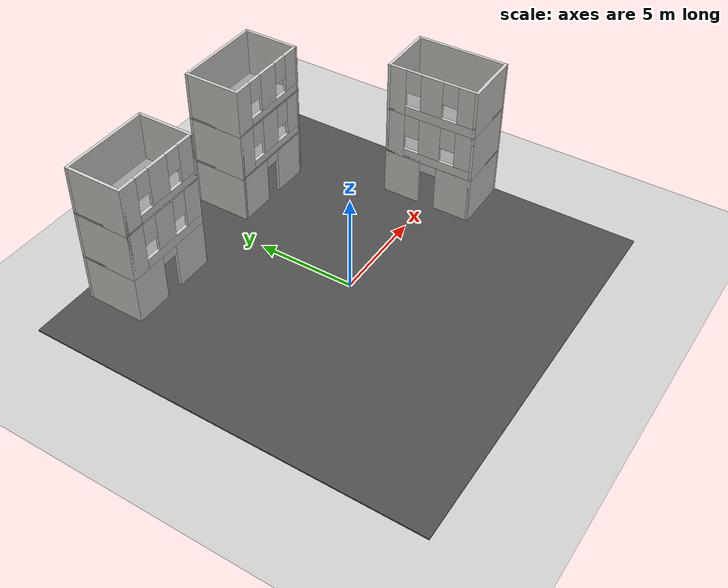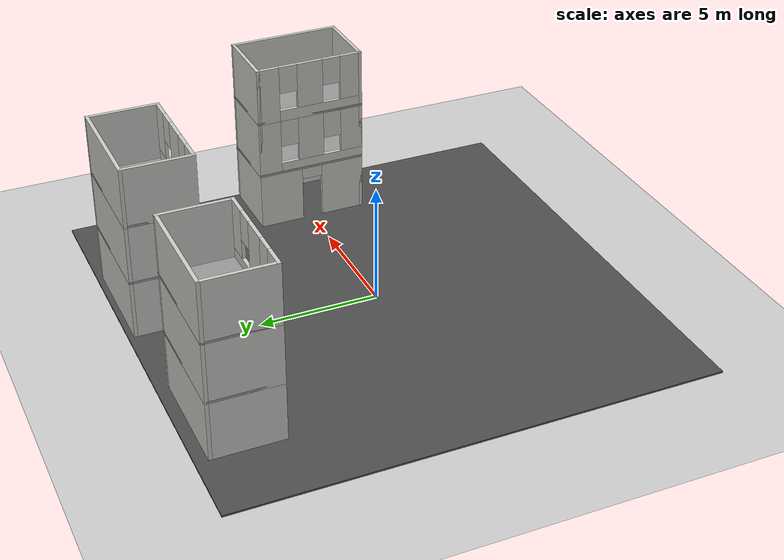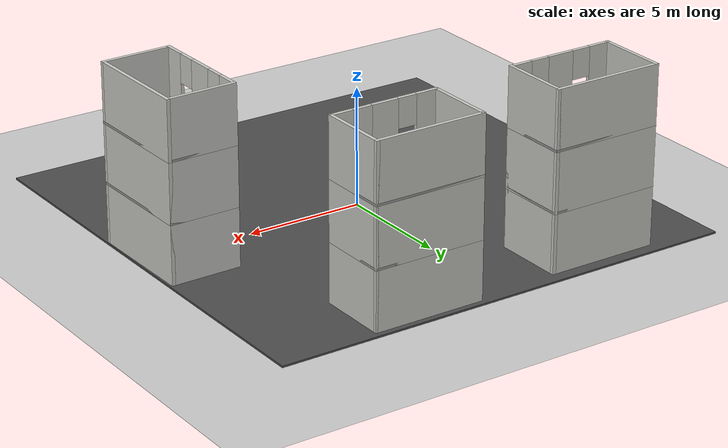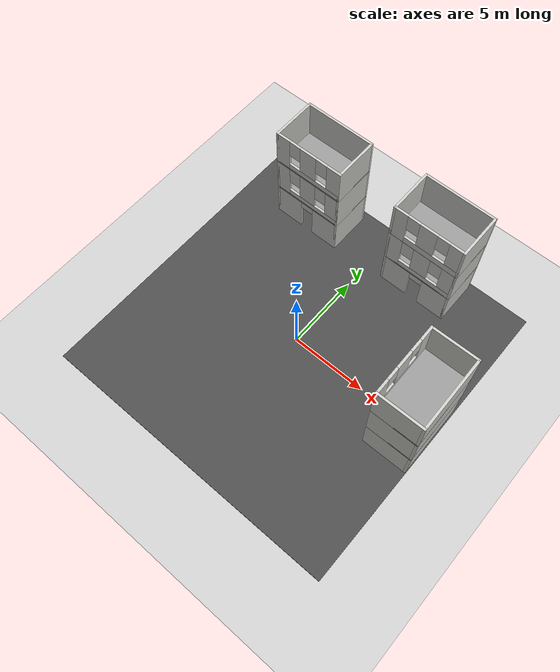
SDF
<sdf version="1.7">
 <world name="default">
  <model name="ground_plane">
   <static>1</static>
   <link name="link">
    <collision name="collision">
     <geometry><plane><normal>0 0 1</normal><size>100 100</size></plane></geometry>
     <surface><friction><ode><mu>100</mu><mu2>50</mu2></ode></friction></surface>
    </collision>
    <visual name="visual">
     <cast_shadows>0</cast_shadows>
     <geometry><plane><normal>0 0 1</normal><size>100 100</size></plane></geometry>
     <material>
      <script><uri>file://media/materials/scripts/gazebo.material</uri><name>Gazebo/Grey</name></script>
     </material>
    </visual>
   </link>
  </model>
  <model name="asphalt_plane">
   <static>1</static>
   <link name="link">
    <collision name="collision"><geometry><box><size>20 20 0.1</size></box></geometry></collision>
    <visual name="visual">
     <cast_shadows>0</cast_shadows>
     <geometry><box><size>20 20 0.1</size></box></geometry>
     <material>
      <script>
       <uri>model://asphalt_plane/materials/scripts</uri>
       <uri>model://asphalt_plane/materials/textures</uri>
       <name>vrc/asphalt</name>
      </script>
     </material>
    </visual>
   </link>
   <pose>0.008449 0.055519 0 0 -0 0</pose>
  </model>
  <model name="apt_0">
   <pose>3.51198 8.32486 0 0 -0 0</pose>
   <link name="Floor_10">
    <collision name="Floor_10_Collision">
     <geometry><box><size>4.75 3 0.1</size></box></geometry>
     <pose>0 0 0.05 0 -0 0</pose>
    </collision>
    <visual name="Floor_10_Visual">
     <pose>0 0 0.05 0 -0 0</pose>
     <geometry><box><size>4.75 3 0.1</size></box></geometry>
     <material>
      <script><uri>file://media/materials/scripts/gazebo.material</uri><name>Gazebo/Grey</name></script>
      <ambient>1 1 1 1</ambient>
     </material>
     <meta><layer>2</layer></meta>
    </visual>
    <pose>-0 0 5 0 -0 0</pose>
   </link>
   <link name="Floor_9">
    <collision name="Floor_9_Collision">
     <geometry><box><size>4.75 3 0.1</size></box></geometry>
     <pose>0 0 0.05 0 -0 0</pose>
    </collision>
    <visual name="Floor_9_Visual">
     <pose>0 0 0.05 0 -0 0</pose>
     <geometry><box><size>4.75 3 0.1</size></box></geometry>
     <material>
      <script><uri>file://media/materials/scripts/gazebo.material</uri><name>Gazebo/Grey</name></script>
      <ambient>1 1 1 1</ambient>
     </material>
     <meta><layer>1</layer></meta>
    </visual>
    <pose>-0 0 2.5 0 -0 0</pose>
   </link>
   <link name="Wall_1">
    <collision name="Wall_1_Collision">
     <geometry><box><size>3 0.15 2.5</size></box></geometry>
     <pose>0 0 1.25 0 -0 0</pose>
    </collision>
    <visual name="Wall_1_Visual">
     <pose>0 0 1.25 0 -0 0</pose>
     <geometry><box><size>3 0.15 2.5</size></box></geometry>
     <material>
      <script><uri>file://media/materials/scripts/gazebo.material</uri><name>Gazebo/CeilingTiled</name></script>
      <ambient>1 1 1 1</ambient>
     </material>
     <meta><layer>0</layer></meta>
    </visual>
    <pose>-2.3 0 0 0 -0 -1.5708</pose>
   </link>
   <link name="Wall_2">
    <pose>-0 -1.425 0 0 -0 0</pose>
    <visual name="Wall_2_Visual_0">
     <pose>-1.4125 0 1.25 0 -0 0</pose>
     <geometry><box><size>1.925 0.15 2.5</size></box></geometry>
     <material>
      <script><uri>file://media/materials/scripts/gazebo.material</uri><name>Gazebo/CeilingTiled</name></script>
      <ambient>1 1 1 1</ambient>
     </material>
     <meta><layer>0</layer></meta>
    </visual>
    <collision name="Wall_2_Collision_0">
     <geometry><box><size>1.925 0.15 2.5</size></box></geometry>
     <pose>-1.4125 0 1.25 0 -0 0</pose>
    </collision>
    <visual name="Wall_2_Visual_1">
     <pose>1.4125 0 1.25 0 -0 0</pose>
     <geometry><box><size>1.925 0.15 2.5</size></box></geometry>
     <material>
      <script><uri>file://media/materials/scripts/gazebo.material</uri><name>Gazebo/CeilingTiled</name></script>
      <ambient>1 1 1 1</ambient>
     </material>
     <meta><layer>0</layer></meta>
    </visual>
    <collision name="Wall_2_Collision_1">
     <geometry><box><size>1.925 0.15 2.5</size></box></geometry>
     <pose>1.4125 0 1.25 0 -0 0</pose>
    </collision>
    <visual name="Wall_2_Visual_2">
     <pose>0 0 2.25 0 -0 0</pose>
     <geometry><box><size>0.9 0.15 0.5</size></box></geometry>
     <material>
      <script><uri>file://media/materials/scripts/gazebo.material</uri><name>Gazebo/CeilingTiled</name></script>
      <ambient>1 1 1 1</ambient>
     </material>
     <meta><layer>0</layer></meta>
    </visual>
    <collision name="Wall_2_Collision_2">
     <geometry><box><size>0.9 0.15 0.5</size></box></geometry>
     <pose>0 0 2.25 0 -0 0</pose>
    </collision>
   </link>
   <link name="Wall_3">
    <collision name="Wall_3_Collision">
     <geometry><box><size>3 0.15 2.5</size></box></geometry>
     <pose>0 0 1.25 0 -0 0</pose>
    </collision>
    <visual name="Wall_3_Visual">
     <pose>0 0 1.25 0 -0 0</pose>
     <geometry><box><size>3 0.15 2.5</size></box></geometry>
     <material>
      <script><uri>file://media/materials/scripts/gazebo.material</uri><name>Gazebo/CeilingTiled</name></script>
      <ambient>1 1 1 1</ambient>
     </material>
     <meta><layer>0</layer></meta>
    </visual>
    <pose>2.3 0 0 0 -0 1.5708</pose>
   </link>
   <link name="Wall_4">
    <collision name="Wall_4_Collision">
     <geometry><box><size>4.75 0.15 2.5</size></box></geometry>
     <pose>0 0 1.25 0 -0 0</pose>
    </collision>
    <visual name="Wall_4_Visual">
     <pose>0 0 1.25 0 -0 0</pose>
     <geometry><box><size>4.75 0.15 2.5</size></box></geometry>
     <material>
      <script><uri>file://media/materials/scripts/gazebo.material</uri><name>Gazebo/CeilingTiled</name></script>
      <ambient>1 1 1 1</ambient>
     </material>
     <meta><layer>0</layer></meta>
    </visual>
    <pose>-0 1.425 0 0 -0 3.14159</pose>
   </link>
   <link name="Wall_42">
    <collision name="Wall_42_Collision">
     <geometry><box><size>3 0.15 2.5</size></box></geometry>
     <pose>0 0 1.25 0 -0 0</pose>
    </collision>
    <visual name="Wall_42_Visual">
     <pose>0 0 1.25 0 -0 0</pose>
     <geometry><box><size>3 0.15 2.5</size></box></geometry>
     <material>
      <script><uri>file://media/materials/scripts/gazebo.material</uri><name>Gazebo/CeilingTiled</name></script>
      <ambient>1 1 1 1</ambient>
     </material>
     <meta><layer>1</layer></meta>
    </visual>
    <pose>-2.3 0 2.5 0 -0 -1.5708</pose>
   </link>
   <link name="Wall_43">
    <pose>-0 -1.425 2.5 0 -0 0</pose>
    <visual name="Wall_43_Visual_0">
     <pose>-1.87625 0 1.25 0 -0 0</pose>
     <geometry><box><size>0.9975 0.15 2.5</size></box></geometry>
     <material>
      <script><uri>file://media/materials/scripts/gazebo.material</uri><name>Gazebo/CeilingTiled</name></script>
      <ambient>1 1 1 1</ambient>
     </material>
     <meta><layer>1</layer></meta>
    </visual>
    <collision name="Wall_43_Collision_0">
     <geometry><box><size>0.9975 0.15 2.5</size></box></geometry>
     <pose>-1.87625 0 1.25 0 -0 0</pose>
    </collision>
    <visual name="Wall_43_Visual_1">
     <pose>0.49875 0 0.25 0 -0 0</pose>
     <geometry><box><size>3.7525 0.15 0.5</size></box></geometry>
     <material>
      <script><uri>file://media/materials/scripts/gazebo.material</uri><name>Gazebo/CeilingTiled</name></script>
      <ambient>1 1 1 1</ambient>
     </material>
     <meta><layer>1</layer></meta>
    </visual>
    <collision name="Wall_43_Collision_1">
     <geometry><box><size>3.7525 0.15 0.5</size></box></geometry>
     <pose>0.49875 0 0.25 0 -0 0</pose>
    </collision>
    <visual name="Wall_43_Visual_2">
     <pose>0 0 1.5 0 -0 0</pose>
     <geometry><box><size>1.155 0.15 2</size></box></geometry>
     <material>
      <script><uri>file://media/materials/scripts/gazebo.material</uri><name>Gazebo/CeilingTiled</name></script>
      <ambient>1 1 1 1</ambient>
     </material>
     <meta><layer>1</layer></meta>
    </visual>
    <collision name="Wall_43_Collision_2">
     <geometry><box><size>1.155 0.15 2</size></box></geometry>
     <pose>0 0 1.5 0 -0 0</pose>
    </collision>
    <visual name="Wall_43_Visual_3">
     <pose>1.87625 0 1.5 0 -0 0</pose>
     <geometry><box><size>0.9975 0.15 2</size></box></geometry>
     <material>
      <script><uri>file://media/materials/scripts/gazebo.material</uri><name>Gazebo/CeilingTiled</name></script>
      <ambient>1 1 1 1</ambient>
     </material>
     <meta><layer>1</layer></meta>
    </visual>
    <collision name="Wall_43_Collision_3">
     <geometry><box><size>0.9975 0.15 2</size></box></geometry>
     <pose>1.87625 0 1.5 0 -0 0</pose>
    </collision>
    <visual name="Wall_43_Visual_4">
     <pose>-0.9775 0 1.9 0 -0 0</pose>
     <geometry><box><size>0.8 0.15 1.2</size></box></geometry>
     <material>
      <script><uri>file://media/materials/scripts/gazebo.material</uri><name>Gazebo/CeilingTiled</name></script>
      <ambient>1 1 1 1</ambient>
     </material>
     <meta><layer>1</layer></meta>
    </visual>
    <collision name="Wall_43_Collision_4">
     <geometry><box><size>0.8 0.15 1.2</size></box></geometry>
     <pose>-0.9775 0 1.9 0 -0 0</pose>
    </collision>
    <visual name="Wall_43_Visual_5">
     <pose>0.9775 0 1.9 0 -0 0</pose>
     <geometry><box><size>0.8 0.15 1.2</size></box></geometry>
     <material>
      <script><uri>file://media/materials/scripts/gazebo.material</uri><name>Gazebo/CeilingTiled</name></script>
      <ambient>1 1 1 1</ambient>
     </material>
     <meta><layer>1</layer></meta>
    </visual>
    <collision name="Wall_43_Collision_5">
     <geometry><box><size>0.8 0.15 1.2</size></box></geometry>
     <pose>0.9775 0 1.9 0 -0 0</pose>
    </collision>
   </link>
   <link name="Wall_44">
    <collision name="Wall_44_Collision">
     <geometry><box><size>3 0.15 2.5</size></box></geometry>
     <pose>0 0 1.25 0 -0 0</pose>
    </collision>
    <visual name="Wall_44_Visual">
     <pose>0 0 1.25 0 -0 0</pose>
     <geometry><box><size>3 0.15 2.5</size></box></geometry>
     <material>
      <script><uri>file://media/materials/scripts/gazebo.material</uri><name>Gazebo/CeilingTiled</name></script>
      <ambient>1 1 1 1</ambient>
     </material>
     <meta><layer>1</layer></meta>
    </visual>
    <pose>2.3 0 2.5 0 -0 1.5708</pose>
   </link>
   <link name="Wall_45">
    <collision name="Wall_45_Collision">
     <geometry><box><size>4.75 0.15 2.5</size></box></geometry>
     <pose>0 0 1.25 0 -0 0</pose>
    </collision>
    <visual name="Wall_45_Visual">
     <pose>0 0 1.25 0 -0 0</pose>
     <geometry><box><size>4.75 0.15 2.5</size></box></geometry>
     <material>
      <script><uri>file://media/materials/scripts/gazebo.material</uri><name>Gazebo/CeilingTiled</name></script>
      <ambient>1 1 1 1</ambient>
     </material>
     <meta><layer>1</layer></meta>
    </visual>
    <pose>-0 1.425 2.5 0 -0 3.14159</pose>
   </link>
   <link name="Wall_46">
    <collision name="Wall_46_Collision">
     <geometry><box><size>3 0.15 2.5</size></box></geometry>
     <pose>0 0 1.25 0 -0 0</pose>
    </collision>
    <visual name="Wall_46_Visual">
     <pose>0 0 1.25 0 -0 0</pose>
     <geometry><box><size>3 0.15 2.5</size></box></geometry>
     <material>
      <script><uri>file://media/materials/scripts/gazebo.material</uri><name>Gazebo/CeilingTiled</name></script>
      <ambient>1 1 1 1</ambient>
     </material>
     <meta><layer>2</layer></meta>
    </visual>
    <pose>-2.3 0 5 0 -0 -1.5708</pose>
   </link>
   <link name="Wall_47">
    <pose>-0 -1.425 5 0 -0 0</pose>
    <visual name="Wall_47_Visual_0">
     <pose>-1.87625 0 1.25 0 -0 0</pose>
     <geometry><box><size>0.9975 0.15 2.5</size></box></geometry>
     <material>
      <script><uri>file://media/materials/scripts/gazebo.material</uri><name>Gazebo/CeilingTiled</name></script>
      <ambient>1 1 1 1</ambient>
     </material>
     <meta><layer>2</layer></meta>
    </visual>
    <collision name="Wall_47_Collision_0">
     <geometry><box><size>0.9975 0.15 2.5</size></box></geometry>
     <pose>-1.87625 0 1.25 0 -0 0</pose>
    </collision>
    <visual name="Wall_47_Visual_1">
     <pose>0.49875 0 0.25 0 -0 0</pose>
     <geometry><box><size>3.7525 0.15 0.5</size></box></geometry>
     <material>
      <script><uri>file://media/materials/scripts/gazebo.material</uri><name>Gazebo/CeilingTiled</name></script>
      <ambient>1 1 1 1</ambient>
     </material>
     <meta><layer>2</layer></meta>
    </visual>
    <collision name="Wall_47_Collision_1">
     <geometry><box><size>3.7525 0.15 0.5</size></box></geometry>
     <pose>0.49875 0 0.25 0 -0 0</pose>
    </collision>
    <visual name="Wall_47_Visual_2">
     <pose>0 0 1.5 0 -0 0</pose>
     <geometry><box><size>1.155 0.15 2</size></box></geometry>
     <material>
      <script><uri>file://media/materials/scripts/gazebo.material</uri><name>Gazebo/CeilingTiled</name></script>
      <ambient>1 1 1 1</ambient>
     </material>
     <meta><layer>2</layer></meta>
    </visual>
    <collision name="Wall_47_Collision_2">
     <geometry><box><size>1.155 0.15 2</size></box></geometry>
     <pose>0 0 1.5 0 -0 0</pose>
    </collision>
    <visual name="Wall_47_Visual_3">
     <pose>1.87625 0 1.5 0 -0 0</pose>
     <geometry><box><size>0.9975 0.15 2</size></box></geometry>
     <material>
      <script><uri>file://media/materials/scripts/gazebo.material</uri><name>Gazebo/CeilingTiled</name></script>
      <ambient>1 1 1 1</ambient>
     </material>
     <meta><layer>2</layer></meta>
    </visual>
    <collision name="Wall_47_Collision_3">
     <geometry><box><size>0.9975 0.15 2</size></box></geometry>
     <pose>1.87625 0 1.5 0 -0 0</pose>
    </collision>
    <visual name="Wall_47_Visual_4">
     <pose>-0.9775 0 1.9 0 -0 0</pose>
     <geometry><box><size>0.8 0.15 1.2</size></box></geometry>
     <material>
      <script><uri>file://media/materials/scripts/gazebo.material</uri><name>Gazebo/CeilingTiled</name></script>
      <ambient>1 1 1 1</ambient>
     </material>
     <meta><layer>2</layer></meta>
    </visual>
    <collision name="Wall_47_Collision_4">
     <geometry><box><size>0.8 0.15 1.2</size></box></geometry>
     <pose>-0.9775 0 1.9 0 -0 0</pose>
    </collision>
    <visual name="Wall_47_Visual_5">
     <pose>0.9775 0 1.9 0 -0 0</pose>
     <geometry><box><size>0.8 0.15 1.2</size></box></geometry>
     <material>
      <script><uri>file://media/materials/scripts/gazebo.material</uri><name>Gazebo/CeilingTiled</name></script>
      <ambient>1 1 1 1</ambient>
     </material>
     <meta><layer>2</layer></meta>
    </visual>
    <collision name="Wall_47_Collision_5">
     <geometry><box><size>0.8 0.15 1.2</size></box></geometry>
     <pose>0.9775 0 1.9 0 -0 0</pose>
    </collision>
   </link>
   <link name="Wall_48">
    <collision name="Wall_48_Collision">
     <geometry><box><size>3 0.15 2.5</size></box></geometry>
     <pose>0 0 1.25 0 -0 0</pose>
    </collision>
    <visual name="Wall_48_Visual">
     <pose>0 0 1.25 0 -0 0</pose>
     <geometry><box><size>3 0.15 2.5</size></box></geometry>
     <material>
      <script><uri>file://media/materials/scripts/gazebo.material</uri><name>Gazebo/CeilingTiled</name></script>
      <ambient>1 1 1 1</ambient>
     </material>
     <meta><layer>2</layer></meta>
    </visual>
    <pose>2.3 0 5 0 -0 1.5708</pose>
   </link>
   <link name="Wall_49">
    <collision name="Wall_49_Collision">
     <geometry><box><size>4.75 0.15 2.5</size></box></geometry>
     <pose>0 0 1.25 0 -0 0</pose>
    </collision>
    <visual name="Wall_49_Visual">
     <pose>0 0 1.25 0 -0 0</pose>
     <geometry><box><size>4.75 0.15 2.5</size></box></geometry>
     <material>
      <script><uri>file://media/materials/scripts/gazebo.material</uri><name>Gazebo/CeilingTiled</name></script>
      <ambient>1 1 1 1</ambient>
     </material>
     <meta><layer>2</layer></meta>
    </visual>
    <pose>-0 1.425 5 0 -0 3.14159</pose>
   </link>
   <static>1</static>
  </model>
  <model name="apt_1">
   <pose>-4.73085 8.05219 0 0 -0 0</pose>
   <link name="Floor_10">
    <collision name="Floor_10_Collision">
     <geometry><box><size>4.75 3 0.1</size></box></geometry>
     <pose>0 0 0.05 0 -0 0</pose>
    </collision>
    <visual name="Floor_10_Visual">
     <pose>0 0 0.05 0 -0 0</pose>
     <geometry><box><size>4.75 3 0.1</size></box></geometry>
     <material>
      <script><uri>file://media/materials/scripts/gazebo.material</uri><name>Gazebo/Grey</name></script>
      <ambient>1 1 1 1</ambient>
     </material>
     <meta><layer>2</layer></meta>
    </visual>
    <pose>-0 0 5 0 -0 0</pose>
   </link>
   <link name="Floor_9">
    <collision name="Floor_9_Collision">
     <geometry><box><size>4.75 3 0.1</size></box></geometry>
     <pose>0 0 0.05 0 -0 0</pose>
    </collision>
    <visual name="Floor_9_Visual">
     <pose>0 0 0.05 0 -0 0</pose>
     <geometry><box><size>4.75 3 0.1</size></box></geometry>
     <material>
      <script><uri>file://media/materials/scripts/gazebo.material</uri><name>Gazebo/Grey</name></script>
      <ambient>1 1 1 1</ambient>
     </material>
     <meta><layer>1</layer></meta>
    </visual>
    <pose>-0 0 2.5 0 -0 0</pose>
   </link>
   <link name="Wall_1">
    <collision name="Wall_1_Collision">
     <geometry><box><size>3 0.15 2.5</size></box></geometry>
     <pose>0 0 1.25 0 -0 0</pose>
    </collision>
    <visual name="Wall_1_Visual">
     <pose>0 0 1.25 0 -0 0</pose>
     <geometry><box><size>3 0.15 2.5</size></box></geometry>
     <material>
      <script><uri>file://media/materials/scripts/gazebo.material</uri><name>Gazebo/CeilingTiled</name></script>
      <ambient>1 1 1 1</ambient>
     </material>
     <meta><layer>0</layer></meta>
    </visual>
    <pose>-2.3 0 0 0 -0 -1.5708</pose>
   </link>
   <link name="Wall_2">
    <pose>-0 -1.425 0 0 -0 0</pose>
    <visual name="Wall_2_Visual_0">
     <pose>-1.4125 0 1.25 0 -0 0</pose>
     <geometry><box><size>1.925 0.15 2.5</size></box></geometry>
     <material>
      <script><uri>file://media/materials/scripts/gazebo.material</uri><name>Gazebo/CeilingTiled</name></script>
      <ambient>1 1 1 1</ambient>
     </material>
     <meta><layer>0</layer></meta>
    </visual>
    <collision name="Wall_2_Collision_0">
     <geometry><box><size>1.925 0.15 2.5</size></box></geometry>
     <pose>-1.4125 0 1.25 0 -0 0</pose>
    </collision>
    <visual name="Wall_2_Visual_1">
     <pose>1.4125 0 1.25 0 -0 0</pose>
     <geometry><box><size>1.925 0.15 2.5</size></box></geometry>
     <material>
      <script><uri>file://media/materials/scripts/gazebo.material</uri><name>Gazebo/CeilingTiled</name></script>
      <ambient>1 1 1 1</ambient>
     </material>
     <meta><layer>0</layer></meta>
    </visual>
    <collision name="Wall_2_Collision_1">
     <geometry><box><size>1.925 0.15 2.5</size></box></geometry>
     <pose>1.4125 0 1.25 0 -0 0</pose>
    </collision>
    <visual name="Wall_2_Visual_2">
     <pose>0 0 2.25 0 -0 0</pose>
     <geometry><box><size>0.9 0.15 0.5</size></box></geometry>
     <material>
      <script><uri>file://media/materials/scripts/gazebo.material</uri><name>Gazebo/CeilingTiled</name></script>
      <ambient>1 1 1 1</ambient>
     </material>
     <meta><layer>0</layer></meta>
    </visual>
    <collision name="Wall_2_Collision_2">
     <geometry><box><size>0.9 0.15 0.5</size></box></geometry>
     <pose>0 0 2.25 0 -0 0</pose>
    </collision>
   </link>
   <link name="Wall_3">
    <collision name="Wall_3_Collision">
     <geometry><box><size>3 0.15 2.5</size></box></geometry>
     <pose>0 0 1.25 0 -0 0</pose>
    </collision>
    <visual name="Wall_3_Visual">
     <pose>0 0 1.25 0 -0 0</pose>
     <geometry><box><size>3 0.15 2.5</size></box></geometry>
     <material>
      <script><uri>file://media/materials/scripts/gazebo.material</uri><name>Gazebo/CeilingTiled</name></script>
      <ambient>1 1 1 1</ambient>
     </material>
     <meta><layer>0</layer></meta>
    </visual>
    <pose>2.3 0 0 0 -0 1.5708</pose>
   </link>
   <link name="Wall_4">
    <collision name="Wall_4_Collision">
     <geometry><box><size>4.75 0.15 2.5</size></box></geometry>
     <pose>0 0 1.25 0 -0 0</pose>
    </collision>
    <visual name="Wall_4_Visual">
     <pose>0 0 1.25 0 -0 0</pose>
     <geometry><box><size>4.75 0.15 2.5</size></box></geometry>
     <material>
      <script><uri>file://media/materials/scripts/gazebo.material</uri><name>Gazebo/CeilingTiled</name></script>
      <ambient>1 1 1 1</ambient>
     </material>
     <meta><layer>0</layer></meta>
    </visual>
    <pose>-0 1.425 0 0 -0 3.14159</pose>
   </link>
   <link name="Wall_42">
    <collision name="Wall_42_Collision">
     <geometry><box><size>3 0.15 2.5</size></box></geometry>
     <pose>0 0 1.25 0 -0 0</pose>
    </collision>
    <visual name="Wall_42_Visual">
     <pose>0 0 1.25 0 -0 0</pose>
     <geometry><box><size>3 0.15 2.5</size></box></geometry>
     <material>
      <script><uri>file://media/materials/scripts/gazebo.material</uri><name>Gazebo/CeilingTiled</name></script>
      <ambient>1 1 1 1</ambient>
     </material>
     <meta><layer>1</layer></meta>
    </visual>
    <pose>-2.3 0 2.5 0 -0 -1.5708</pose>
   </link>
   <link name="Wall_43">
    <pose>-0 -1.425 2.5 0 -0 0</pose>
    <visual name="Wall_43_Visual_0">
     <pose>-1.87625 0 1.25 0 -0 0</pose>
     <geometry><box><size>0.9975 0.15 2.5</size></box></geometry>
     <material>
      <script><uri>file://media/materials/scripts/gazebo.material</uri><name>Gazebo/CeilingTiled</name></script>
      <ambient>1 1 1 1</ambient>
     </material>
     <meta><layer>1</layer></meta>
    </visual>
    <collision name="Wall_43_Collision_0">
     <geometry><box><size>0.9975 0.15 2.5</size></box></geometry>
     <pose>-1.87625 0 1.25 0 -0 0</pose>
    </collision>
    <visual name="Wall_43_Visual_1">
     <pose>0.49875 0 0.25 0 -0 0</pose>
     <geometry><box><size>3.7525 0.15 0.5</size></box></geometry>
     <material>
      <script><uri>file://media/materials/scripts/gazebo.material</uri><name>Gazebo/CeilingTiled</name></script>
      <ambient>1 1 1 1</ambient>
     </material>
     <meta><layer>1</layer></meta>
    </visual>
    <collision name="Wall_43_Collision_1">
     <geometry><box><size>3.7525 0.15 0.5</size></box></geometry>
     <pose>0.49875 0 0.25 0 -0 0</pose>
    </collision>
    <visual name="Wall_43_Visual_2">
     <pose>0 0 1.5 0 -0 0</pose>
     <geometry><box><size>1.155 0.15 2</size></box></geometry>
     <material>
      <script><uri>file://media/materials/scripts/gazebo.material</uri><name>Gazebo/CeilingTiled</name></script>
      <ambient>1 1 1 1</ambient>
     </material>
     <meta><layer>1</layer></meta>
    </visual>
    <collision name="Wall_43_Collision_2">
     <geometry><box><size>1.155 0.15 2</size></box></geometry>
     <pose>0 0 1.5 0 -0 0</pose>
    </collision>
    <visual name="Wall_43_Visual_3">
     <pose>1.87625 0 1.5 0 -0 0</pose>
     <geometry><box><size>0.9975 0.15 2</size></box></geometry>
     <material>
      <script><uri>file://media/materials/scripts/gazebo.material</uri><name>Gazebo/CeilingTiled</name></script>
      <ambient>1 1 1 1</ambient>
     </material>
     <meta><layer>1</layer></meta>
    </visual>
    <collision name="Wall_43_Collision_3">
     <geometry><box><size>0.9975 0.15 2</size></box></geometry>
     <pose>1.87625 0 1.5 0 -0 0</pose>
    </collision>
    <visual name="Wall_43_Visual_4">
     <pose>-0.9775 0 1.9 0 -0 0</pose>
     <geometry><box><size>0.8 0.15 1.2</size></box></geometry>
     <material>
      <script><uri>file://media/materials/scripts/gazebo.material</uri><name>Gazebo/CeilingTiled</name></script>
      <ambient>1 1 1 1</ambient>
     </material>
     <meta><layer>1</layer></meta>
    </visual>
    <collision name="Wall_43_Collision_4">
     <geometry><box><size>0.8 0.15 1.2</size></box></geometry>
     <pose>-0.9775 0 1.9 0 -0 0</pose>
    </collision>
    <visual name="Wall_43_Visual_5">
     <pose>0.9775 0 1.9 0 -0 0</pose>
     <geometry><box><size>0.8 0.15 1.2</size></box></geometry>
     <material>
      <script><uri>file://media/materials/scripts/gazebo.material</uri><name>Gazebo/CeilingTiled</name></script>
      <ambient>1 1 1 1</ambient>
     </material>
     <meta><layer>1</layer></meta>
    </visual>
    <collision name="Wall_43_Collision_5">
     <geometry><box><size>0.8 0.15 1.2</size></box></geometry>
     <pose>0.9775 0 1.9 0 -0 0</pose>
    </collision>
   </link>
   <link name="Wall_44">
    <collision name="Wall_44_Collision">
     <geometry><box><size>3 0.15 2.5</size></box></geometry>
     <pose>0 0 1.25 0 -0 0</pose>
    </collision>
    <visual name="Wall_44_Visual">
     <pose>0 0 1.25 0 -0 0</pose>
     <geometry><box><size>3 0.15 2.5</size></box></geometry>
     <material>
      <script><uri>file://media/materials/scripts/gazebo.material</uri><name>Gazebo/CeilingTiled</name></script>
      <ambient>1 1 1 1</ambient>
     </material>
     <meta><layer>1</layer></meta>
    </visual>
    <pose>2.3 0 2.5 0 -0 1.5708</pose>
   </link>
   <link name="Wall_45">
    <collision name="Wall_45_Collision">
     <geometry><box><size>4.75 0.15 2.5</size></box></geometry>
     <pose>0 0 1.25 0 -0 0</pose>
    </collision>
    <visual name="Wall_45_Visual">
     <pose>0 0 1.25 0 -0 0</pose>
     <geometry><box><size>4.75 0.15 2.5</size></box></geometry>
     <material>
      <script><uri>file://media/materials/scripts/gazebo.material</uri><name>Gazebo/CeilingTiled</name></script>
      <ambient>1 1 1 1</ambient>
     </material>
     <meta><layer>1</layer></meta>
    </visual>
    <pose>-0 1.425 2.5 0 -0 3.14159</pose>
   </link>
   <link name="Wall_46">
    <collision name="Wall_46_Collision">
     <geometry><box><size>3 0.15 2.5</size></box></geometry>
     <pose>0 0 1.25 0 -0 0</pose>
    </collision>
    <visual name="Wall_46_Visual">
     <pose>0 0 1.25 0 -0 0</pose>
     <geometry><box><size>3 0.15 2.5</size></box></geometry>
     <material>
      <script><uri>file://media/materials/scripts/gazebo.material</uri><name>Gazebo/CeilingTiled</name></script>
      <ambient>1 1 1 1</ambient>
     </material>
     <meta><layer>2</layer></meta>
    </visual>
    <pose>-2.3 0 5 0 -0 -1.5708</pose>
   </link>
   <link name="Wall_47">
    <pose>-0 -1.425 5 0 -0 0</pose>
    <visual name="Wall_47_Visual_0">
     <pose>-1.87625 0 1.25 0 -0 0</pose>
     <geometry><box><size>0.9975 0.15 2.5</size></box></geometry>
     <material>
      <script><uri>file://media/materials/scripts/gazebo.material</uri><name>Gazebo/CeilingTiled</name></script>
      <ambient>1 1 1 1</ambient>
     </material>
     <meta><layer>2</layer></meta>
    </visual>
    <collision name="Wall_47_Collision_0">
     <geometry><box><size>0.9975 0.15 2.5</size></box></geometry>
     <pose>-1.87625 0 1.25 0 -0 0</pose>
    </collision>
    <visual name="Wall_47_Visual_1">
     <pose>0.49875 0 0.25 0 -0 0</pose>
     <geometry><box><size>3.7525 0.15 0.5</size></box></geometry>
     <material>
      <script><uri>file://media/materials/scripts/gazebo.material</uri><name>Gazebo/CeilingTiled</name></script>
      <ambient>1 1 1 1</ambient>
     </material>
     <meta><layer>2</layer></meta>
    </visual>
    <collision name="Wall_47_Collision_1">
     <geometry><box><size>3.7525 0.15 0.5</size></box></geometry>
     <pose>0.49875 0 0.25 0 -0 0</pose>
    </collision>
    <visual name="Wall_47_Visual_2">
     <pose>0 0 1.5 0 -0 0</pose>
     <geometry><box><size>1.155 0.15 2</size></box></geometry>
     <material>
      <script><uri>file://media/materials/scripts/gazebo.material</uri><name>Gazebo/CeilingTiled</name></script>
      <ambient>1 1 1 1</ambient>
     </material>
     <meta><layer>2</layer></meta>
    </visual>
    <collision name="Wall_47_Collision_2">
     <geometry><box><size>1.155 0.15 2</size></box></geometry>
     <pose>0 0 1.5 0 -0 0</pose>
    </collision>
    <visual name="Wall_47_Visual_3">
     <pose>1.87625 0 1.5 0 -0 0</pose>
     <geometry><box><size>0.9975 0.15 2</size></box></geometry>
     <material>
      <script><uri>file://media/materials/scripts/gazebo.material</uri><name>Gazebo/CeilingTiled</name></script>
      <ambient>1 1 1 1</ambient>
     </material>
     <meta><layer>2</layer></meta>
    </visual>
    <collision name="Wall_47_Collision_3">
     <geometry><box><size>0.9975 0.15 2</size></box></geometry>
     <pose>1.87625 0 1.5 0 -0 0</pose>
    </collision>
    <visual name="Wall_47_Visual_4">
     <pose>-0.9775 0 1.9 0 -0 0</pose>
     <geometry><box><size>0.8 0.15 1.2</size></box></geometry>
     <material>
      <script><uri>file://media/materials/scripts/gazebo.material</uri><name>Gazebo/CeilingTiled</name></script>
      <ambient>1 1 1 1</ambient>
     </material>
     <meta><layer>2</layer></meta>
    </visual>
    <collision name="Wall_47_Collision_4">
     <geometry><box><size>0.8 0.15 1.2</size></box></geometry>
     <pose>-0.9775 0 1.9 0 -0 0</pose>
    </collision>
    <visual name="Wall_47_Visual_5">
     <pose>0.9775 0 1.9 0 -0 0</pose>
     <geometry><box><size>0.8 0.15 1.2</size></box></geometry>
     <material>
      <script><uri>file://media/materials/scripts/gazebo.material</uri><name>Gazebo/CeilingTiled</name></script>
      <ambient>1 1 1 1</ambient>
     </material>
     <meta><layer>2</layer></meta>
    </visual>
    <collision name="Wall_47_Collision_5">
     <geometry><box><size>0.8 0.15 1.2</size></box></geometry>
     <pose>0.9775 0 1.9 0 -0 0</pose>
    </collision>
   </link>
   <link name="Wall_48">
    <collision name="Wall_48_Collision">
     <geometry><box><size>3 0.15 2.5</size></box></geometry>
     <pose>0 0 1.25 0 -0 0</pose>
    </collision>
    <visual name="Wall_48_Visual">
     <pose>0 0 1.25 0 -0 0</pose>
     <geometry><box><size>3 0.15 2.5</size></box></geometry>
     <material>
      <script><uri>file://media/materials/scripts/gazebo.material</uri><name>Gazebo/CeilingTiled</name></script>
      <ambient>1 1 1 1</ambient>
     </material>
     <meta><layer>2</layer></meta>
    </visual>
    <pose>2.3 0 5 0 -0 1.5708</pose>
   </link>
   <link name="Wall_49">
    <collision name="Wall_49_Collision">
     <geometry><box><size>4.75 0.15 2.5</size></box></geometry>
     <pose>0 0 1.25 0 -0 0</pose>
    </collision>
    <visual name="Wall_49_Visual">
     <pose>0 0 1.25 0 -0 0</pose>
     <geometry><box><size>4.75 0.15 2.5</size></box></geometry>
     <material>
      <script><uri>file://media/materials/scripts/gazebo.material</uri><name>Gazebo/CeilingTiled</name></script>
      <ambient>1 1 1 1</ambient>
     </material>
     <meta><layer>2</layer></meta>
    </visual>
    <pose>-0 1.425 5 0 -0 3.14159</pose>
   </link>
   <static>1</static>
  </model>
  <model name="apt_clone">
   <pose>8.44557 -0.016768 0 0 0 -1.56125</pose>
   <link name="Floor_10">
    <collision name="Floor_10_Collision">
     <geometry><box><size>4.75 3 0.1</size></box></geometry>
     <pose>0 0 0.05 0 -0 0</pose>
    </collision>
    <visual name="Floor_10_Visual">
     <pose>0 0 0.05 0 -0 0</pose>
     <geometry><box><size>4.75 3 0.1</size></box></geometry>
     <material>
      <script><uri>file://media/materials/scripts/gazebo.material</uri><name>Gazebo/Grey</name></script>
      <ambient>1 1 1 1</ambient>
     </material>
     <meta><layer>2</layer></meta>
    </visual>
    <pose>-0 0 5 0 -0 0</pose>
   </link>
   <link name="Floor_9">
    <collision name="Floor_9_Collision">
     <geometry><box><size>4.75 3 0.1</size></box></geometry>
     <pose>0 0 0.05 0 -0 0</pose>
    </collision>
    <visual name="Floor_9_Visual">
     <pose>0 0 0.05 0 -0 0</pose>
     <geometry><box><size>4.75 3 0.1</size></box></geometry>
     <material>
      <script><uri>file://media/materials/scripts/gazebo.material</uri><name>Gazebo/Grey</name></script>
      <ambient>1 1 1 1</ambient>
     </material>
     <meta><layer>1</layer></meta>
    </visual>
    <pose>-0 0 2.5 0 -0 0</pose>
   </link>
   <link name="Wall_1">
    <collision name="Wall_1_Collision">
     <geometry><box><size>3 0.15 2.5</size></box></geometry>
     <pose>0 0 1.25 0 -0 0</pose>
    </collision>
    <visual name="Wall_1_Visual">
     <pose>0 0 1.25 0 -0 0</pose>
     <geometry><box><size>3 0.15 2.5</size></box></geometry>
     <material>
      <script><uri>file://media/materials/scripts/gazebo.material</uri><name>Gazebo/CeilingTiled</name></script>
      <ambient>1 1 1 1</ambient>
     </material>
     <meta><layer>0</layer></meta>
    </visual>
    <pose>-2.3 0 0 0 -0 -1.5708</pose>
   </link>
   <link name="Wall_2">
    <pose>-0 -1.425 0 0 -0 0</pose>
    <visual name="Wall_2_Visual_0">
     <pose>-1.4125 0 1.25 0 -0 0</pose>
     <geometry><box><size>1.925 0.15 2.5</size></box></geometry>
     <material>
      <script><uri>file://media/materials/scripts/gazebo.material</uri><name>Gazebo/CeilingTiled</name></script>
      <ambient>1 1 1 1</ambient>
     </material>
     <meta><layer>0</layer></meta>
    </visual>
    <collision name="Wall_2_Collision_0">
     <geometry><box><size>1.925 0.15 2.5</size></box></geometry>
     <pose>-1.4125 0 1.25 0 -0 0</pose>
    </collision>
    <visual name="Wall_2_Visual_1">
     <pose>1.4125 0 1.25 0 -0 0</pose>
     <geometry><box><size>1.925 0.15 2.5</size></box></geometry>
     <material>
      <script><uri>file://media/materials/scripts/gazebo.material</uri><name>Gazebo/CeilingTiled</name></script>
      <ambient>1 1 1 1</ambient>
     </material>
     <meta><layer>0</layer></meta>
    </visual>
    <collision name="Wall_2_Collision_1">
     <geometry><box><size>1.925 0.15 2.5</size></box></geometry>
     <pose>1.4125 0 1.25 0 -0 0</pose>
    </collision>
    <visual name="Wall_2_Visual_2">
     <pose>0 0 2.25 0 -0 0</pose>
     <geometry><box><size>0.9 0.15 0.5</size></box></geometry>
     <material>
      <script><uri>file://media/materials/scripts/gazebo.material</uri><name>Gazebo/CeilingTiled</name></script>
      <ambient>1 1 1 1</ambient>
     </material>
     <meta><layer>0</layer></meta>
    </visual>
    <collision name="Wall_2_Collision_2">
     <geometry><box><size>0.9 0.15 0.5</size></box></geometry>
     <pose>0 0 2.25 0 -0 0</pose>
    </collision>
   </link>
   <link name="Wall_3">
    <collision name="Wall_3_Collision">
     <geometry><box><size>3 0.15 2.5</size></box></geometry>
     <pose>0 0 1.25 0 -0 0</pose>
    </collision>
    <visual name="Wall_3_Visual">
     <pose>0 0 1.25 0 -0 0</pose>
     <geometry><box><size>3 0.15 2.5</size></box></geometry>
     <material>
      <script><uri>file://media/materials/scripts/gazebo.material</uri><name>Gazebo/CeilingTiled</name></script>
      <ambient>1 1 1 1</ambient>
     </material>
     <meta><layer>0</layer></meta>
    </visual>
    <pose>2.3 0 0 0 -0 1.5708</pose>
   </link>
   <link name="Wall_4">
    <collision name="Wall_4_Collision">
     <geometry><box><size>4.75 0.15 2.5</size></box></geometry>
     <pose>0 0 1.25 0 -0 0</pose>
    </collision>
    <visual name="Wall_4_Visual">
     <pose>0 0 1.25 0 -0 0</pose>
     <geometry><box><size>4.75 0.15 2.5</size></box></geometry>
     <material>
      <script><uri>file://media/materials/scripts/gazebo.material</uri><name>Gazebo/CeilingTiled</name></script>
      <ambient>1 1 1 1</ambient>
     </material>
     <meta><layer>0</layer></meta>
    </visual>
    <pose>-0 1.425 0 0 -0 3.14159</pose>
   </link>
   <link name="Wall_42">
    <collision name="Wall_42_Collision">
     <geometry><box><size>3 0.15 2.5</size></box></geometry>
     <pose>0 0 1.25 0 -0 0</pose>
    </collision>
    <visual name="Wall_42_Visual">
     <pose>0 0 1.25 0 -0 0</pose>
     <geometry><box><size>3 0.15 2.5</size></box></geometry>
     <material>
      <script><uri>file://media/materials/scripts/gazebo.material</uri><name>Gazebo/CeilingTiled</name></script>
      <ambient>1 1 1 1</ambient>
     </material>
     <meta><layer>1</layer></meta>
    </visual>
    <pose>-2.3 0 2.5 0 -0 -1.5708</pose>
   </link>
   <link name="Wall_43">
    <pose>-0 -1.425 2.5 0 -0 0</pose>
    <visual name="Wall_43_Visual_0">
     <pose>-1.87625 0 1.25 0 -0 0</pose>
     <geometry><box><size>0.9975 0.15 2.5</size></box></geometry>
     <material>
      <script><uri>file://media/materials/scripts/gazebo.material</uri><name>Gazebo/CeilingTiled</name></script>
      <ambient>1 1 1 1</ambient>
     </material>
     <meta><layer>1</layer></meta>
    </visual>
    <collision name="Wall_43_Collision_0">
     <geometry><box><size>0.9975 0.15 2.5</size></box></geometry>
     <pose>-1.87625 0 1.25 0 -0 0</pose>
    </collision>
    <visual name="Wall_43_Visual_1">
     <pose>0.49875 0 0.25 0 -0 0</pose>
     <geometry><box><size>3.7525 0.15 0.5</size></box></geometry>
     <material>
      <script><uri>file://media/materials/scripts/gazebo.material</uri><name>Gazebo/CeilingTiled</name></script>
      <ambient>1 1 1 1</ambient>
     </material>
     <meta><layer>1</layer></meta>
    </visual>
    <collision name="Wall_43_Collision_1">
     <geometry><box><size>3.7525 0.15 0.5</size></box></geometry>
     <pose>0.49875 0 0.25 0 -0 0</pose>
    </collision>
    <visual name="Wall_43_Visual_2">
     <pose>0 0 1.5 0 -0 0</pose>
     <geometry><box><size>1.155 0.15 2</size></box></geometry>
     <material>
      <script><uri>file://media/materials/scripts/gazebo.material</uri><name>Gazebo/CeilingTiled</name></script>
      <ambient>1 1 1 1</ambient>
     </material>
     <meta><layer>1</layer></meta>
    </visual>
    <collision name="Wall_43_Collision_2">
     <geometry><box><size>1.155 0.15 2</size></box></geometry>
     <pose>0 0 1.5 0 -0 0</pose>
    </collision>
    <visual name="Wall_43_Visual_3">
     <pose>1.87625 0 1.5 0 -0 0</pose>
     <geometry><box><size>0.9975 0.15 2</size></box></geometry>
     <material>
      <script><uri>file://media/materials/scripts/gazebo.material</uri><name>Gazebo/CeilingTiled</name></script>
      <ambient>1 1 1 1</ambient>
     </material>
     <meta><layer>1</layer></meta>
    </visual>
    <collision name="Wall_43_Collision_3">
     <geometry><box><size>0.9975 0.15 2</size></box></geometry>
     <pose>1.87625 0 1.5 0 -0 0</pose>
    </collision>
    <visual name="Wall_43_Visual_4">
     <pose>-0.9775 0 1.9 0 -0 0</pose>
     <geometry><box><size>0.8 0.15 1.2</size></box></geometry>
     <material>
      <script><uri>file://media/materials/scripts/gazebo.material</uri><name>Gazebo/CeilingTiled</name></script>
      <ambient>1 1 1 1</ambient>
     </material>
     <meta><layer>1</layer></meta>
    </visual>
    <collision name="Wall_43_Collision_4">
     <geometry><box><size>0.8 0.15 1.2</size></box></geometry>
     <pose>-0.9775 0 1.9 0 -0 0</pose>
    </collision>
    <visual name="Wall_43_Visual_5">
     <pose>0.9775 0 1.9 0 -0 0</pose>
     <geometry><box><size>0.8 0.15 1.2</size></box></geometry>
     <material>
      <script><uri>file://media/materials/scripts/gazebo.material</uri><name>Gazebo/CeilingTiled</name></script>
      <ambient>1 1 1 1</ambient>
     </material>
     <meta><layer>1</layer></meta>
    </visual>
    <collision name="Wall_43_Collision_5">
     <geometry><box><size>0.8 0.15 1.2</size></box></geometry>
     <pose>0.9775 0 1.9 0 -0 0</pose>
    </collision>
   </link>
   <link name="Wall_44">
    <collision name="Wall_44_Collision">
     <geometry><box><size>3 0.15 2.5</size></box></geometry>
     <pose>0 0 1.25 0 -0 0</pose>
    </collision>
    <visual name="Wall_44_Visual">
     <pose>0 0 1.25 0 -0 0</pose>
     <geometry><box><size>3 0.15 2.5</size></box></geometry>
     <material>
      <script><uri>file://media/materials/scripts/gazebo.material</uri><name>Gazebo/CeilingTiled</name></script>
      <ambient>1 1 1 1</ambient>
     </material>
     <meta><layer>1</layer></meta>
    </visual>
    <pose>2.3 0 2.5 0 -0 1.5708</pose>
   </link>
   <link name="Wall_45">
    <collision name="Wall_45_Collision">
     <geometry><box><size>4.75 0.15 2.5</size></box></geometry>
     <pose>0 0 1.25 0 -0 0</pose>
    </collision>
    <visual name="Wall_45_Visual">
     <pose>0 0 1.25 0 -0 0</pose>
     <geometry><box><size>4.75 0.15 2.5</size></box></geometry>
     <material>
      <script><uri>file://media/materials/scripts/gazebo.material</uri><name>Gazebo/CeilingTiled</name></script>
      <ambient>1 1 1 1</ambient>
     </material>
     <meta><layer>1</layer></meta>
    </visual>
    <pose>-0 1.425 2.5 0 -0 3.14159</pose>
   </link>
   <link name="Wall_46">
    <collision name="Wall_46_Collision">
     <geometry><box><size>3 0.15 2.5</size></box></geometry>
     <pose>0 0 1.25 0 -0 0</pose>
    </collision>
    <visual name="Wall_46_Visual">
     <pose>0 0 1.25 0 -0 0</pose>
     <geometry><box><size>3 0.15 2.5</size></box></geometry>
     <material>
      <script><uri>file://media/materials/scripts/gazebo.material</uri><name>Gazebo/CeilingTiled</name></script>
      <ambient>1 1 1 1</ambient>
     </material>
     <meta><layer>2</layer></meta>
    </visual>
    <pose>-2.3 0 5 0 -0 -1.5708</pose>
   </link>
   <link name="Wall_47">
    <pose>-0 -1.425 5 0 -0 0</pose>
    <visual name="Wall_47_Visual_0">
     <pose>-1.87625 0 1.25 0 -0 0</pose>
     <geometry><box><size>0.9975 0.15 2.5</size></box></geometry>
     <material>
      <script><uri>file://media/materials/scripts/gazebo.material</uri><name>Gazebo/CeilingTiled</name></script>
      <ambient>1 1 1 1</ambient>
     </material>
     <meta><layer>2</layer></meta>
    </visual>
    <collision name="Wall_47_Collision_0">
     <geometry><box><size>0.9975 0.15 2.5</size></box></geometry>
     <pose>-1.87625 0 1.25 0 -0 0</pose>
    </collision>
    <visual name="Wall_47_Visual_1">
     <pose>0.49875 0 0.25 0 -0 0</pose>
     <geometry><box><size>3.7525 0.15 0.5</size></box></geometry>
     <material>
      <script><uri>file://media/materials/scripts/gazebo.material</uri><name>Gazebo/CeilingTiled</name></script>
      <ambient>1 1 1 1</ambient>
     </material>
     <meta><layer>2</layer></meta>
    </visual>
    <collision name="Wall_47_Collision_1">
     <geometry><box><size>3.7525 0.15 0.5</size></box></geometry>
     <pose>0.49875 0 0.25 0 -0 0</pose>
    </collision>
    <visual name="Wall_47_Visual_2">
     <pose>0 0 1.5 0 -0 0</pose>
     <geometry><box><size>1.155 0.15 2</size></box></geometry>
     <material>
      <script><uri>file://media/materials/scripts/gazebo.material</uri><name>Gazebo/CeilingTiled</name></script>
      <ambient>1 1 1 1</ambient>
     </material>
     <meta><layer>2</layer></meta>
    </visual>
    <collision name="Wall_47_Collision_2">
     <geometry><box><size>1.155 0.15 2</size></box></geometry>
     <pose>0 0 1.5 0 -0 0</pose>
    </collision>
    <visual name="Wall_47_Visual_3">
     <pose>1.87625 0 1.5 0 -0 0</pose>
     <geometry><box><size>0.9975 0.15 2</size></box></geometry>
     <material>
      <script><uri>file://media/materials/scripts/gazebo.material</uri><name>Gazebo/CeilingTiled</name></script>
      <ambient>1 1 1 1</ambient>
     </material>
     <meta><layer>2</layer></meta>
    </visual>
    <collision name="Wall_47_Collision_3">
     <geometry><box><size>0.9975 0.15 2</size></box></geometry>
     <pose>1.87625 0 1.5 0 -0 0</pose>
    </collision>
    <visual name="Wall_47_Visual_4">
     <pose>-0.9775 0 1.9 0 -0 0</pose>
     <geometry><box><size>0.8 0.15 1.2</size></box></geometry>
     <material>
      <script><uri>file://media/materials/scripts/gazebo.material</uri><name>Gazebo/CeilingTiled</name></script>
      <ambient>1 1 1 1</ambient>
     </material>
     <meta><layer>2</layer></meta>
    </visual>
    <collision name="Wall_47_Collision_4">
     <geometry><box><size>0.8 0.15 1.2</size></box></geometry>
     <pose>-0.9775 0 1.9 0 -0 0</pose>
    </collision>
    <visual name="Wall_47_Visual_5">
     <pose>0.9775 0 1.9 0 -0 0</pose>
     <geometry><box><size>0.8 0.15 1.2</size></box></geometry>
     <material>
      <script><uri>file://media/materials/scripts/gazebo.material</uri><name>Gazebo/CeilingTiled</name></script>
      <ambient>1 1 1 1</ambient>
     </material>
     <meta><layer>2</layer></meta>
    </visual>
    <collision name="Wall_47_Collision_5">
     <geometry><box><size>0.8 0.15 1.2</size></box></geometry>
     <pose>0.9775 0 1.9 0 -0 0</pose>
    </collision>
   </link>
   <link name="Wall_48">
    <collision name="Wall_48_Collision">
     <geometry><box><size>3 0.15 2.5</size></box></geometry>
     <pose>0 0 1.25 0 -0 0</pose>
    </collision>
    <visual name="Wall_48_Visual">
     <pose>0 0 1.25 0 -0 0</pose>
     <geometry><box><size>3 0.15 2.5</size></box></geometry>
     <material>
      <script><uri>file://media/materials/scripts/gazebo.material</uri><name>Gazebo/CeilingTiled</name></script>
      <ambient>1 1 1 1</ambient>
     </material>
     <meta><layer>2</layer></meta>
    </visual>
    <pose>2.3 0 5 0 -0 1.5708</pose>
   </link>
   <link name="Wall_49">
    <collision name="Wall_49_Collision">
     <geometry><box><size>4.75 0.15 2.5</size></box></geometry>
     <pose>0 0 1.25 0 -0 0</pose>
    </collision>
    <visual name="Wall_49_Visual">
     <pose>0 0 1.25 0 -0 0</pose>
     <geometry><box><size>4.75 0.15 2.5</size></box></geometry>
     <material>
      <script><uri>file://media/materials/scripts/gazebo.material</uri><name>Gazebo/CeilingTiled</name></script>
      <ambient>1 1 1 1</ambient>
     </material>
     <meta><layer>2</layer></meta>
    </visual>
    <pose>-0 1.425 5 0 -0 3.14159</pose>
   </link>
   <static>1</static>
  </model>
 </world>
</sdf>
